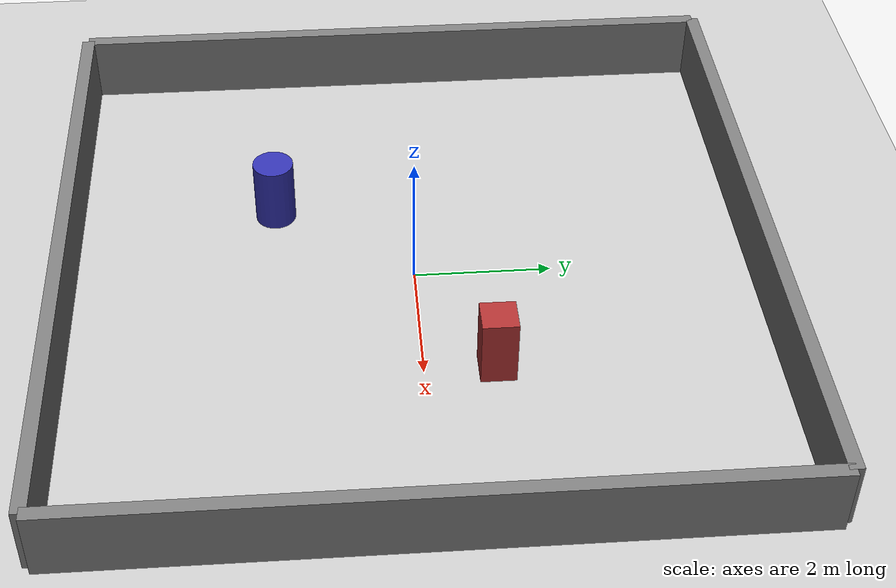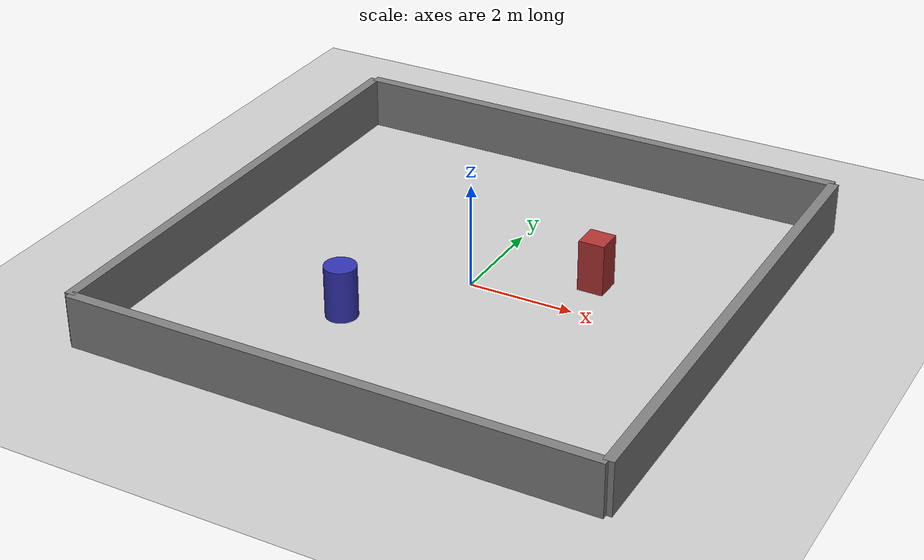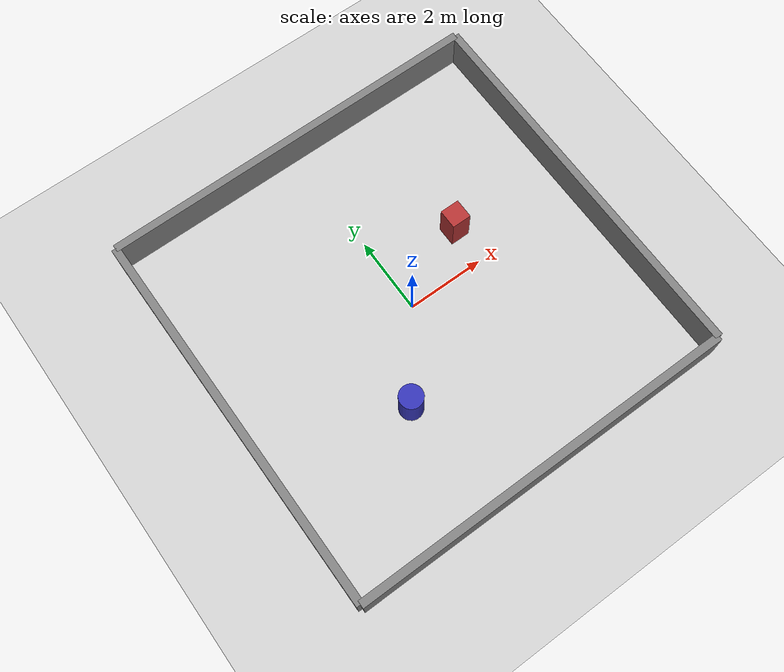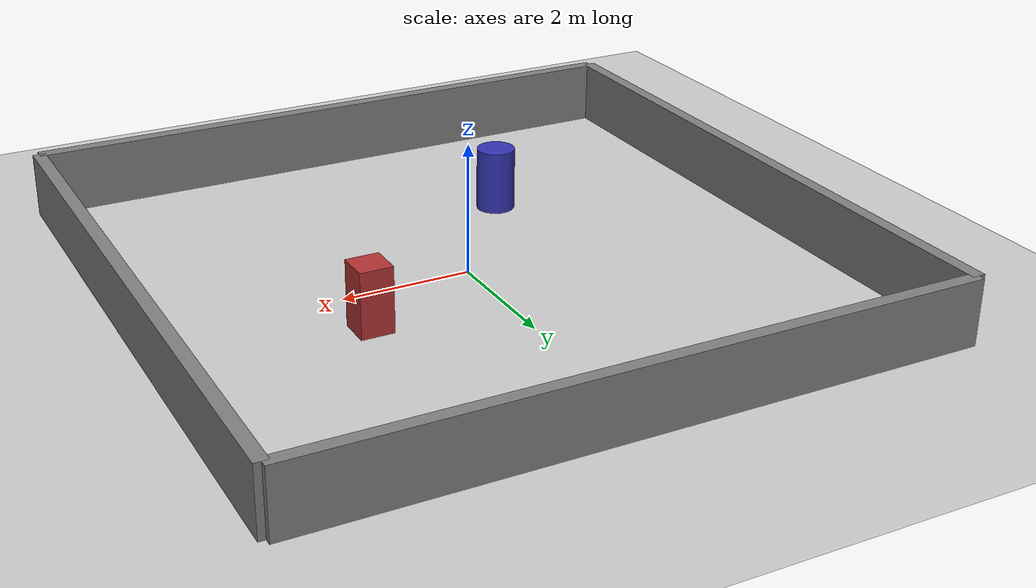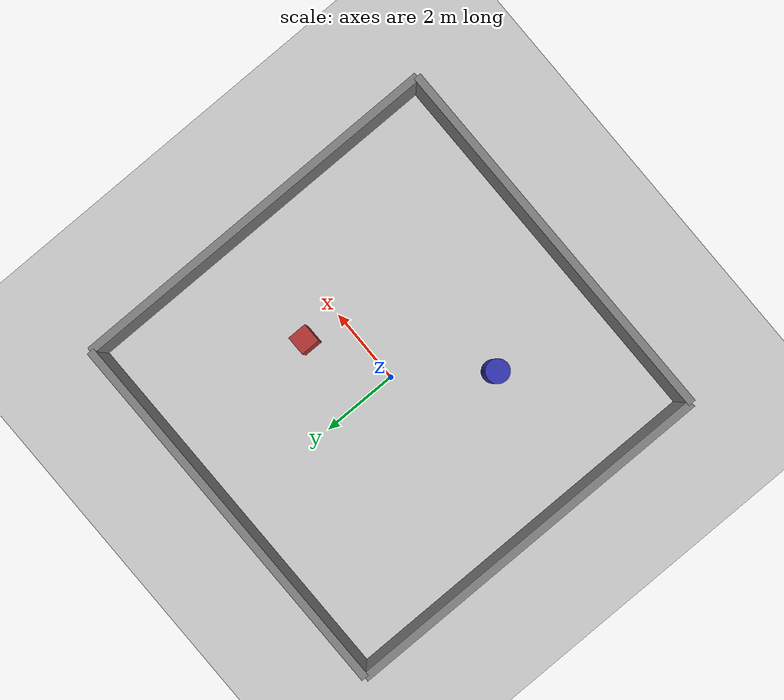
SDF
<?xml version="1.0"?>
<sdf version="1.6">
  <world name="test_arena">

    <!-- Physics -->
    <physics type="ode">
      <max_step_size>0.001</max_step_size>
      <real_time_factor>1.0</real_time_factor>
      <real_time_update_rate>1000</real_time_update_rate>
    </physics>

    <!-- Scene -->
    <scene>
      <ambient>0.4 0.4 0.4 1</ambient>
      <background>0.7 0.7 0.7 1</background>
      <shadows>true</shadows>
    </scene>

    <!-- Sun -->
    <light name="sun" type="directional">
      <cast_shadows>true</cast_shadows>
      <pose>0 0 10 0 0 0</pose>
      <diffuse>0.8 0.8 0.8 1</diffuse>
      <specular>0.2 0.2 0.2 1</specular>
      <attenuation>
        <range>1000</range>
        <constant>0.9</constant>
        <linear>0.01</linear>
        <quadratic>0.001</quadratic>
      </attenuation>
      <direction>-0.5 0.1 -0.9</direction>
    </light>

    <!-- Ground plane -->
    <model name="ground_plane">
      <static>true</static>
      <link name="link">
        <collision name="collision">
          <geometry>
            <plane>
              <normal>0 0 1</normal>
              <size>100 100</size>
            </plane>
          </geometry>
        </collision>
        <visual name="visual">
          <geometry>
            <plane>
              <normal>0 0 1</normal>
              <size>100 100</size>
            </plane>
          </geometry>
          <material>
            <ambient>0.8 0.8 0.8 1</ambient>
            <diffuse>0.8 0.8 0.8 1</diffuse>
          </material>
        </visual>
      </link>
    </model>

    <!-- Test obstacles -->
    <model name="obstacle_box_1">
      <static>true</static>
      <pose>2 1 0.5 0 0 0</pose>
      <link name="link">
        <collision name="collision">
          <geometry>
            <box>
              <size>0.5 0.5 1.0</size>
            </box>
          </geometry>
        </collision>
        <visual name="visual">
          <geometry>
            <box>
              <size>0.5 0.5 1.0</size>
            </box>
          </geometry>
          <material>
            <ambient>0.7 0.2 0.2 1</ambient>
            <diffuse>0.7 0.2 0.2 1</diffuse>
          </material>
        </visual>
      </link>
    </model>

    <model name="obstacle_cylinder_1">
      <static>true</static>
      <pose>-1.5 -2 0.5 0 0 0</pose>
      <link name="link">
        <collision name="collision">
          <geometry>
            <cylinder>
              <radius>0.3</radius>
              <length>1.0</length>
            </cylinder>
          </geometry>
        </collision>
        <visual name="visual">
          <geometry>
            <cylinder>
              <radius>0.3</radius>
              <length>1.0</length>
            </cylinder>
          </geometry>
          <material>
            <ambient>0.2 0.2 0.7 1</ambient>
            <diffuse>0.2 0.2 0.7 1</diffuse>
          </material>
        </visual>
      </link>
    </model>

    <!-- Wall boundaries -->
    <model name="wall_north">
      <static>true</static>
      <pose>0 5 0.5 0 0 0</pose>
      <link name="link">
        <collision name="collision">
          <geometry>
            <box>
              <size>10 0.2 1.0</size>
            </box>
          </geometry>
        </collision>
        <visual name="visual">
          <geometry>
            <box>
              <size>10 0.2 1.0</size>
            </box>
          </geometry>
          <material>
            <ambient>0.5 0.5 0.5 1</ambient>
            <diffuse>0.5 0.5 0.5 1</diffuse>
          </material>
        </visual>
      </link>
    </model>

    <model name="wall_south">
      <static>true</static>
      <pose>0 -5 0.5 0 0 0</pose>
      <link name="link">
        <collision name="collision">
          <geometry>
            <box>
              <size>10 0.2 1.0</size>
            </box>
          </geometry>
        </collision>
        <visual name="visual">
          <geometry>
            <box>
              <size>10 0.2 1.0</size>
            </box>
          </geometry>
          <material>
            <ambient>0.5 0.5 0.5 1</ambient>
            <diffuse>0.5 0.5 0.5 1</diffuse>
          </material>
        </visual>
      </link>
    </model>

    <model name="wall_east">
      <static>true</static>
      <pose>5 0 0.5 0 0 0</pose>
      <link name="link">
        <collision name="collision">
          <geometry>
            <box>
              <size>0.2 10 1.0</size>
            </box>
          </geometry>
        </collision>
        <visual name="visual">
          <geometry>
            <box>
              <size>0.2 10 1.0</size>
            </box>
          </geometry>
          <material>
            <ambient>0.5 0.5 0.5 1</ambient>
            <diffuse>0.5 0.5 0.5 1</diffuse>
          </material>
        </visual>
      </link>
    </model>

    <model name="wall_west">
      <static>true</static>
      <pose>-5 0 0.5 0 0 0</pose>
      <link name="link">
        <collision name="collision">
          <geometry>
            <box>
              <size>0.2 10 1.0</size>
            </box>
          </geometry>
        </collision>
        <visual name="visual">
          <geometry>
            <box>
              <size>0.2 10 1.0</size>
            </box>
          </geometry>
          <material>
            <ambient>0.5 0.5 0.5 1</ambient>
            <diffuse>0.5 0.5 0.5 1</diffuse>
          </material>
        </visual>
      </link>
    </model>

  </world>
</sdf>
